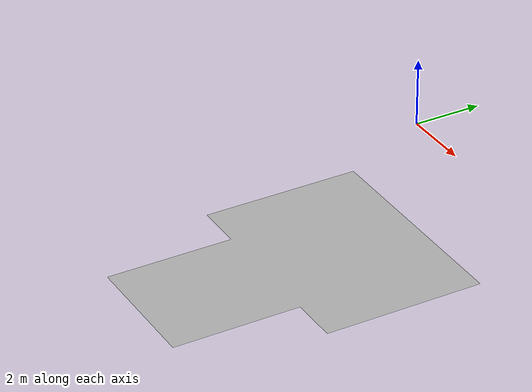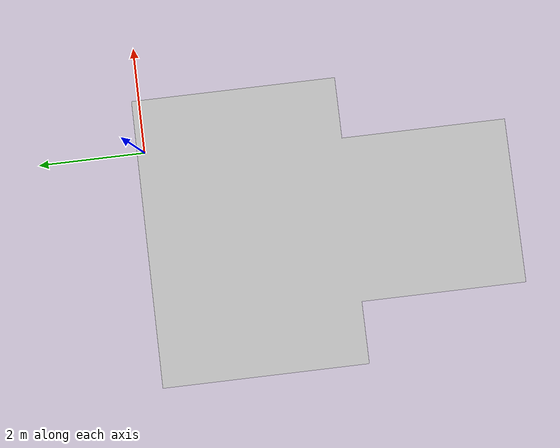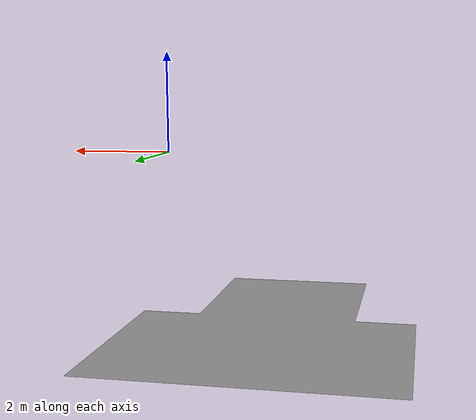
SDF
<?xml version="1.0" ?>
<sdf version="1.6">
  <model name="floor">
  <pose>0 0 0 -1.57079632679 0 0</pose>
  <static>true</static>
    <link name="floor">
      <pose>0 0 0 0 0 0</pose>

      <!-- fix -->
      <collision name="collision">
        <geometry>
          <mesh>
            <uri>model://floor/meshes/floor.dae</uri>
          </mesh>
        </geometry>
        <surface>
          <friction>
            <ode>
              <mu>10.0</mu>
              <mu2>10.0</mu2>
            </ode>
          </friction>
        </surface>
      </collision>

      <visual name="floor_visual">
        <geometry><mesh><uri>model://floor/meshes/floor.dae</uri></mesh></geometry>
        </visual>
      </link>

  </model>
</sdf>
